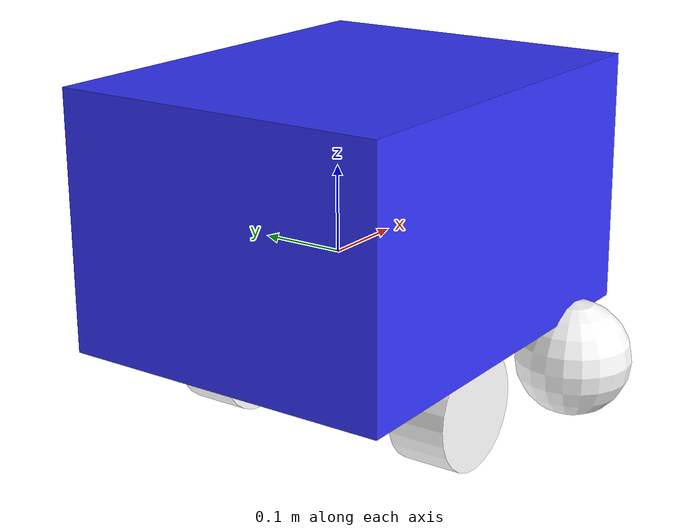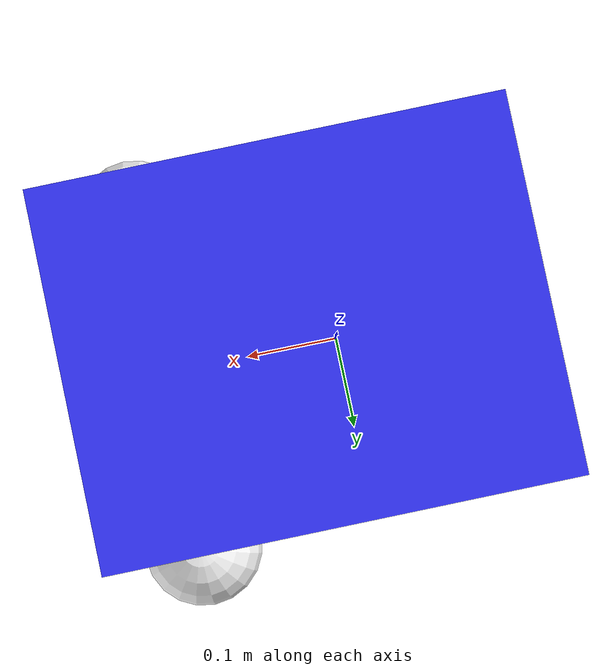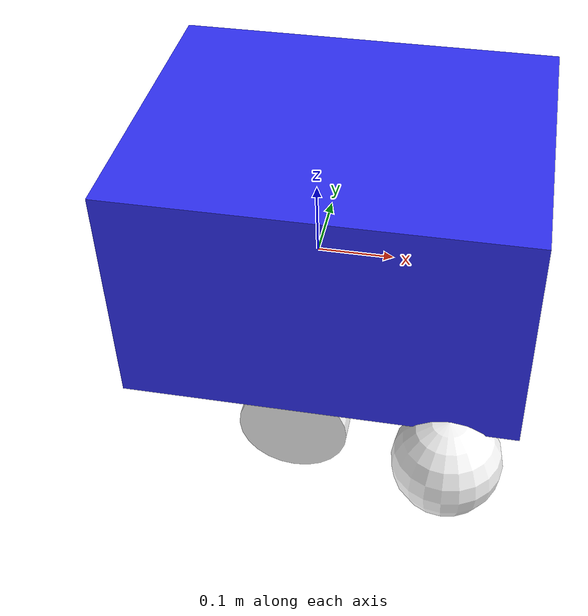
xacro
<?xml version="1.0"?>
<robot xmlns:xacro="http://www.ros.org/wiki/xacro">

    <xacro:include filename="inertial.urdf.xacro"/>

    <material name="white">
        <color rgba="1 1 1 1" />
    </material>

    <material name="orange">
        <color rgba="1 0.3 0.1 1" />
    </material>

    <material name="blue">
        <color rgba="0.2 0.2 1 1" />
    </material>

    <material name="black">
        <color rgba="0 0 0 1" />
    </material>

<!--base link-->
    <link name="base_link">

    </link>
<!--BASE_FOOTPRINT LINK-->
    <joint name="base_footprint_joint" type="fixed">
        <parent link="base_link"/>
        <child link="base_footprint"/>
        <origin xyz="0 0 0" rpy="0 0 0"/>
    </joint>

    <link name="base_footprint">
    </link>

<!--chassis link-->

    <joint name="chassis_joint" type="fixed">
        <parent link="base_link"/>
        <child link="chassis"/>
        <origin xyz="-0.1 0 0"/>

    </joint>

    <link name="chassis">
        <visual>
            <origin xyz="0.135 0 0.052885"/>
            <geometry>
                <box size="0.5 0.4 0.3"/>
            </geometry>
            <material name="blue"/>
        </visual>
        <collision>
            <origin xyz="0.135 0 0.052885"/>
            <geometry>
                <box size="0.5 0.4 0.3"/>
            </geometry>
        </collision>

        <xacro:inertial_box mass="30" x="0.27" y="0.168" z="0.10577">
            <origin xyz="0.135 0 0.052885" rpy="0 0 0"/>

        </xacro:inertial_box>

    </link>
    <gazebo reference="chassis">
        <material>Gazebo/Red</material>
    </gazebo>

<!--Left wheel link-->

    <joint name="left_wheel_joint" type="continuous">
        <parent link="base_link"/>
        <child link="left_wheel"/>
        <origin xyz="0 0.15 -0.15" rpy="-${pi/2} 0 0"/>  <!-- we are rotating the whole bot 90 degrees wrt x axis..-->
        <axis xyz="0 0 1"/>
    </joint>

    <link name="left_wheel">
        <visual>
            <geometry>
                <cylinder radius="0.07" length="0.070"/>
            </geometry>
            <material name="white"/>
        </visual>
        <collision>
            <geometry>
                <sphere radius="0.07"/>
            </geometry>
        </collision>
        <xacro:inertial_cylinder mass="4" length="0.07" radius="0.07">
            <origin xyz = "0 0 0" rpy = "0 0 0 "/>
        </xacro:inertial_cylinder>
        </link>

        <gazebo reference="left_wheel">
            <material>Gazebo/White</material>
        </gazebo>

<!--Right wheel link-->

    <joint name="right_wheel_joint" type="continuous">
        <parent link="base_link"/>
        <child link="right_wheel"/>
        <origin xyz="0 -0.15 -0.15" rpy="${pi/2} 0 0"/>  <!-- we are rotating the whole bot 90 degrees wrt x axis..-->
        <axis xyz="0 0 -1"/>
    </joint>

    <link name="right_wheel">
        <visual>
            <geometry>
                <cylinder radius="0.07" length="0.070"/>
            </geometry>
            <material name="white"/>
        </visual>
        <collision>
            <geometry>
                <sphere radius="0.07"/>
            </geometry>
            <material name="white"/>
        </collision>
        <xacro:inertial_cylinder mass="4" length="0.07" radius="0.07">
            <origin xyz = "0 0 0" rpy = "0 0 0 "/>
        </xacro:inertial_cylinder>
    </link>

    <gazebo reference="right_wheel">
        <material>Gazebo/White</material>
    </gazebo>

    <!--Caster wheel_left -->
    <joint name="caster_wheel_left_joint" type="fixed">
        <parent link="chassis"/>
        <child link="caster_wheel_left"/>
        <origin xyz="0.3 0.2 -0.15"/>
    </joint>

    <link name="caster_wheel_left">
        <visual>
            <geometry>
                <sphere radius="0.07"/>
            </geometry>
            <material name="white"/>
        </visual>
        <collision>
            <geometry>
                <sphere radius="0.07"/>
            </geometry>
            <material name="white"/>
        </collision>
        <xacro:inertial_sphere mass="5" radius="0.07">
            <origin xyz="0 0 0" rpy="0 0 0"/>
        </xacro:inertial_sphere>
    </link>
    <gazebo reference="caster_wheel_left">
        <material>Gazebo/White</material>
        <mu1 value="0.01"/>
        <mu2 value="0.01"/>

    </gazebo>

       <!--Caster wheel right-->
       <joint name="caster_wheel_right_joint" type="fixed">
        <parent link="chassis"/>
        <child link="caster_wheel_right"/>
        <origin xyz="0.3 -0.2 -0.15"/>
    </joint>

    <link name="caster_wheel_right">
        <visual>
            <geometry>
                <sphere radius="0.07"/>
            </geometry>
            <material name="white"/>
        </visual>
        <collision>
            <geometry>
                <sphere radius="0.07"/>
            </geometry>
            <material name="white"/>
        </collision>
        <xacro:inertial_sphere mass="5" radius="0.07">
            <origin xyz="0 0 0" rpy="0 0 0"/>
        </xacro:inertial_sphere>
    </link>
    <gazebo reference="caster_wheel_right">
        <material>Gazebo/White</material>
        <mu1 value="0.01"/>
        <mu2 value="0.01"/>

    </gazebo>

</robot>
